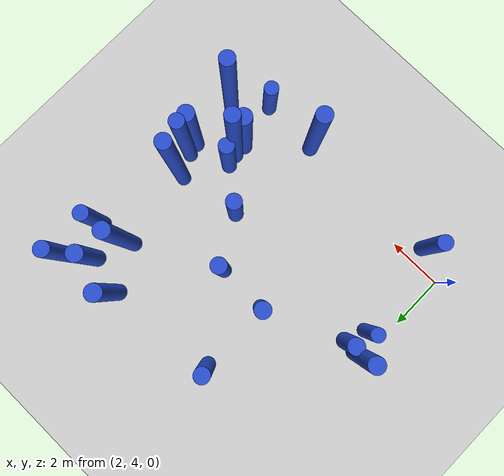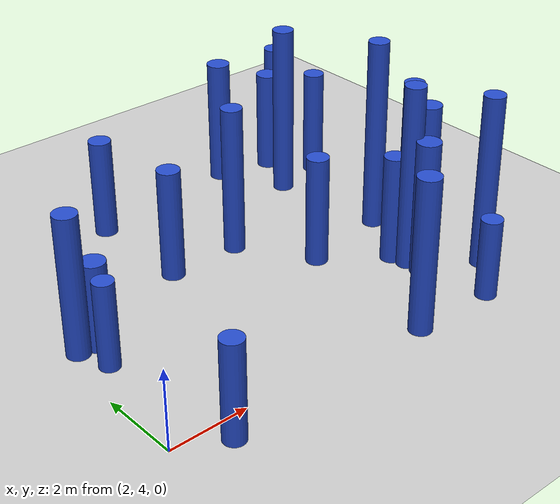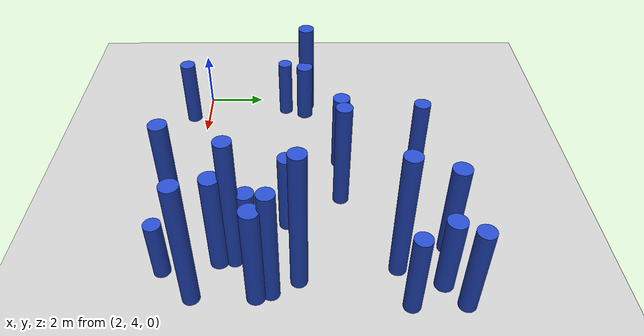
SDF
<sdf version="1.6">
 <world name="default">
  <plugin name="disable_physics" filename="libdisable_physics.so"/>
  <light name="sun" type="directional">
   <pose>0 0 10 0 -0 0</pose>
   <diffuse>0.8 0.8 0.8 1</diffuse>
   <specular>0.1 0.1 0.1 1</specular>
   <attenuation>
    <range>1000</range>
    <constant>0.9</constant>
    <linear>0.01</linear>
    <quadratic>0.001</quadratic>
   </attenuation>
   <direction>-0.5 0.5 -1</direction>
  </light>
  <model name="ground_plane">
   <static>1</static>
   <link name="link">
    <collision name="collision">
     <geometry><plane><normal>0 0 1</normal><size>100 100</size></plane></geometry>
     <surface><friction><ode><mu>100</mu><mu2>50</mu2></ode></friction></surface>
    </collision>
    <visual name="visual">
     <cast_shadows>0</cast_shadows>
     <geometry><plane><normal>0 0 1</normal><size>100 100</size></plane></geometry>
     <material>
      <script><uri>file://media/materials/scripts/gazebo.material</uri><name>Gazebo/Grey</name></script>
     </material>
    </visual>
   </link>
  </model>
  <gravity>0 0 -9.8</gravity>
  <magnetic_field>6e-06 2.3e-05 -4.2e-05</magnetic_field>
  <atmosphere type="adiabatic"/>
  <physics name="default_physics" default="0" type="ode">
   <max_step_size>0.001</max_step_size>
   <real_time_factor>1</real_time_factor>
   <real_time_update_rate>1000</real_time_update_rate>
  </physics>
  <scene><ambient>0.4 0.4 0.4 1</ambient><background>0.7 0.7 0.7 1</background><shadows>1</shadows></scene>
  <spherical_coordinates>
   <surface_model>EARTH_WGS84</surface_model>
   <latitude_deg>0</latitude_deg>
   <longitude_deg>0</longitude_deg>
   <elevation>0</elevation>
   <heading_deg>0</heading_deg>
  </spherical_coordinates>
  <model name="0">
   <static>0</static>
   <link name="link">
    <inertial>
     <mass>2</mass>
     <inertia>
      <ixx>3.44229</ixx>
      <ixy>0</ixy>
      <ixz>0</ixz>
      <iyy>3.44229</iyy>
      <iyz>0</iyz>
      <izz>0.0727484</izz>
     </inertia>
    </inertial>
    <collision name="collision">
     <geometry><cylinder><length>4.52056</length><radius>0.269719</radius></cylinder></geometry>
     <surface><contact><collide_without_contact>1</collide_without_contact></contact></surface>
    </collision>
    <visual name="visual">
     <geometry><cylinder><length>4.52056</length><radius>0.269719</radius></cylinder></geometry>
     <material>
      <script><uri>file://media/materials/scripts/gazebo.material</uri><name>Gazebo/Blue</name></script>
     </material>
    </visual>
    <gravity>0</gravity>
   </link>
   <pose>10.7828 10.6141 2.26028 0 -0 0</pose>
  </model>
  <model name="1">
   <static>0</static>
   <link name="link">
    <inertial>
     <mass>2</mass>
     <inertia>
      <ixx>3.77038</ixx>
      <ixy>0</ixy>
      <ixz>0</ixz>
      <iyy>3.77038</iyy>
      <iyz>0</iyz>
      <izz>0.0675363</izz>
     </inertia>
    </inertial>
    <collision name="collision">
     <geometry><cylinder><length>4.73494</length><radius>0.259878</radius></cylinder></geometry>
     <surface><contact><collide_without_contact>1</collide_without_contact></contact></surface>
    </collision>
    <visual name="visual">
     <geometry><cylinder><length>4.73494</length><radius>0.259878</radius></cylinder></geometry>
     <material>
      <script><uri>file://media/materials/scripts/gazebo.material</uri><name>Gazebo/Blue</name></script>
     </material>
    </visual>
    <gravity>0</gravity>
   </link>
   <pose>10.4505 5.68745 2.36747 0 -0 0</pose>
  </model>
  <model name="2">
   <static>0</static>
   <link name="link">
    <inertial>
     <mass>2</mass>
     <inertia>
      <ixx>1.37651</ixx>
      <ixy>0</ixy>
      <ixz>0</ixz>
      <iyy>1.37651</iyy>
      <iyz>0</iyz>
      <izz>0.0771164</izz>
     </inertia>
    </inertial>
    <collision name="collision">
     <geometry><cylinder><length>2.83332</length><radius>0.277698</radius></cylinder></geometry>
     <surface><contact><collide_without_contact>1</collide_without_contact></contact></surface>
    </collision>
    <visual name="visual">
     <geometry><cylinder><length>2.83332</length><radius>0.277698</radius></cylinder></geometry>
     <material>
      <script><uri>file://media/materials/scripts/gazebo.material</uri><name>Gazebo/Blue</name></script>
     </material>
    </visual>
    <gravity>0</gravity>
   </link>
   <pose>8.91758 7.25137 1.41666 0 -0 0</pose>
  </model>
  <model name="3">
   <static>0</static>
   <link name="link">
    <inertial>
     <mass>2</mass>
     <inertia><ixx>1.63383</ixx><ixy>0</ixy><ixz>0</ixz><iyy>1.63383</iyy><iyz>0</iyz><izz>0.075994</izz></inertia>
    </inertial>
    <collision name="collision">
     <geometry><cylinder><length>3.09435</length><radius>0.27567</radius></cylinder></geometry>
     <surface><contact><collide_without_contact>1</collide_without_contact></contact></surface>
    </collision>
    <visual name="visual">
     <geometry><cylinder><length>3.09435</length><radius>0.27567</radius></cylinder></geometry>
     <material>
      <script><uri>file://media/materials/scripts/gazebo.material</uri><name>Gazebo/Blue</name></script>
     </material>
    </visual>
    <gravity>0</gravity>
   </link>
   <pose>12.0781 12.4745 1.54718 0 -0 0</pose>
  </model>
  <model name="4">
   <static>0</static>
   <link name="link">
    <inertial>
     <mass>2</mass>
     <inertia>
      <ixx>2.58514</ixx>
      <ixy>0</ixy>
      <ixz>0</ixz>
      <iyy>2.58514</iyy>
      <iyz>0</iyz>
      <izz>0.0817187</izz>
     </inertia>
    </inertial>
    <collision name="collision">
     <geometry><cylinder><length>3.90714</length><radius>0.285865</radius></cylinder></geometry>
     <surface><contact><collide_without_contact>1</collide_without_contact></contact></surface>
    </collision>
    <visual name="visual">
     <geometry><cylinder><length>3.90714</length><radius>0.285865</radius></cylinder></geometry>
     <material>
      <script><uri>file://media/materials/scripts/gazebo.material</uri><name>Gazebo/Blue</name></script>
     </material>
    </visual>
    <gravity>0</gravity>
   </link>
   <pose>8.67666 3.55763 1.95357 0 -0 0</pose>
  </model>
  <model name="5">
   <static>0</static>
   <link name="link">
    <inertial>
     <mass>2</mass>
     <inertia>
      <ixx>0.734026</ixx>
      <ixy>0</ixy>
      <ixz>0</ixz>
      <iyy>0.734026</iyy>
      <iyz>0</iyz>
      <izz>0.0687196</izz>
     </inertia>
    </inertial>
    <collision name="collision">
     <geometry><cylinder><length>2.0489</length><radius>0.262144</radius></cylinder></geometry>
     <surface><contact><collide_without_contact>1</collide_without_contact></contact></surface>
    </collision>
    <visual name="visual">
     <geometry><cylinder><length>2.0489</length><radius>0.262144</radius></cylinder></geometry>
     <material>
      <script><uri>file://media/materials/scripts/gazebo.material</uri><name>Gazebo/Blue</name></script>
     </material>
    </visual>
    <gravity>0</gravity>
   </link>
   <pose>10.8459 3.50955 1.02445 0 -0 0</pose>
  </model>
  <model name="6">
   <static>0</static>
   <link name="link">
    <inertial>
     <mass>2</mass>
     <inertia>
      <ixx>1.05331</ixx>
      <ixy>0</ixy>
      <ixz>0</ixz>
      <iyy>1.05331</iyy>
      <iyz>0</iyz>
      <izz>0.0729255</izz>
     </inertia>
    </inertial>
    <collision name="collision">
     <geometry><cylinder><length>2.47004</length><radius>0.270047</radius></cylinder></geometry>
     <surface><contact><collide_without_contact>1</collide_without_contact></contact></surface>
    </collision>
    <visual name="visual">
     <geometry><cylinder><length>2.47004</length><radius>0.270047</radius></cylinder></geometry>
     <material>
      <script><uri>file://media/materials/scripts/gazebo.material</uri><name>Gazebo/Blue</name></script>
     </material>
    </visual>
    <gravity>0</gravity>
   </link>
   <pose>3.1969 3.42769 1.23502 0 -0 0</pose>
  </model>
  <model name="7">
   <static>0</static>
   <link name="link">
    <inertial>
     <mass>2</mass>
     <inertia>
      <ixx>4.19533</ixx>
      <ixy>0</ixy>
      <ixz>0</ixz>
      <iyy>4.19533</iyy>
      <iyz>0</iyz>
      <izz>0.0680755</izz>
     </inertia>
    </inertial>
    <collision name="collision">
     <geometry><cylinder><length>4.99677</length><radius>0.260913</radius></cylinder></geometry>
     <surface><contact><collide_without_contact>1</collide_without_contact></contact></surface>
    </collision>
    <visual name="visual">
     <geometry><cylinder><length>4.99677</length><radius>0.260913</radius></cylinder></geometry>
     <material>
      <script><uri>file://media/materials/scripts/gazebo.material</uri><name>Gazebo/Blue</name></script>
     </material>
    </visual>
    <gravity>0</gravity>
   </link>
   <pose>11.2302 7.64226 2.49839 0 -0 0</pose>
  </model>
  <model name="8">
   <static>0</static>
   <link name="link">
    <inertial>
     <mass>2</mass>
     <inertia><ixx>2.49</ixx><ixy>0</ixy><ixz>0</ixz><iyy>2.49</iyy><iyz>0</iyz><izz>0.0701199</izz></inertia>
    </inertial>
    <collision name="collision">
     <geometry><cylinder><length>3.83792</length><radius>0.264802</radius></cylinder></geometry>
     <surface><contact><collide_without_contact>1</collide_without_contact></contact></surface>
    </collision>
    <visual name="visual">
     <geometry><cylinder><length>3.83792</length><radius>0.264802</radius></cylinder></geometry>
     <material>
      <script><uri>file://media/materials/scripts/gazebo.material</uri><name>Gazebo/Blue</name></script>
     </material>
    </visual>
    <gravity>0</gravity>
   </link>
   <pose>7.76716 9.01307 1.91896 0 -0 0</pose>
  </model>
  <model name="9">
   <static>0</static>
   <link name="link">
    <inertial>
     <mass>2</mass>
     <inertia>
      <ixx>2.06386</ixx>
      <ixy>0</ixy>
      <ixz>0</ixz>
      <iyy>2.06386</iyy>
      <iyz>0</iyz>
      <izz>0.0891851</izz>
     </inertia>
    </inertial>
    <collision name="collision">
     <geometry><cylinder><length>3.48075</length><radius>0.298639</radius></cylinder></geometry>
     <surface><contact><collide_without_contact>1</collide_without_contact></contact></surface>
    </collision>
    <visual name="visual">
     <geometry><cylinder><length>3.48075</length><radius>0.298639</radius></cylinder></geometry>
     <material>
      <script><uri>file://media/materials/scripts/gazebo.material</uri><name>Gazebo/Blue</name></script>
     </material>
    </visual>
    <gravity>0</gravity>
   </link>
   <pose>10.4849 5.21768 1.74037 0 -0 0</pose>
  </model>
  <model name="10">
   <static>0</static>
   <link name="link">
    <inertial>
     <mass>2</mass>
     <inertia>
      <ixx>2.17796</ixx>
      <ixy>0</ixy>
      <ixz>0</ixz>
      <iyy>2.17796</iyy>
      <iyz>0</iyz>
      <izz>0.0832298</izz>
     </inertia>
    </inertial>
    <collision name="collision">
     <geometry><cylinder><length>3.58024</length><radius>0.288496</radius></cylinder></geometry>
     <surface><contact><collide_without_contact>1</collide_without_contact></contact></surface>
    </collision>
    <visual name="visual">
     <geometry><cylinder><length>3.58024</length><radius>0.288496</radius></cylinder></geometry>
     <material>
      <script><uri>file://media/materials/scripts/gazebo.material</uri><name>Gazebo/Blue</name></script>
     </material>
    </visual>
    <gravity>0</gravity>
   </link>
   <pose>11.8068 6.40251 1.79012 0 -0 0</pose>
  </model>
  <model name="11">
   <static>0</static>
   <link name="link">
    <inertial>
     <mass>2</mass>
     <inertia><ixx>1.38951</ixx><ixy>0</ixy><ixz>0</ixz><iyy>1.38951</iyy><iyz>0</iyz><izz>0.071622</izz></inertia>
    </inertial>
    <collision name="collision">
     <geometry><cylinder><length>2.84994</length><radius>0.267623</radius></cylinder></geometry>
     <surface><contact><collide_without_contact>1</collide_without_contact></contact></surface>
    </collision>
    <visual name="visual">
     <geometry><cylinder><length>2.84994</length><radius>0.267623</radius></cylinder></geometry>
     <material>
      <script><uri>file://media/materials/scripts/gazebo.material</uri><name>Gazebo/Blue</name></script>
     </material>
    </visual>
    <gravity>0</gravity>
   </link>
   <pose>12.1093 10.885 1.42497 0 -0 0</pose>
  </model>
  <model name="12">
   <static>0</static>
   <link name="link">
    <inertial>
     <mass>2</mass>
     <inertia>
      <ixx>0.857719</ixx>
      <ixy>0</ixy>
      <ixz>0</ixz>
      <iyy>0.857719</iyy>
      <iyz>0</iyz>
      <izz>0.0884862</izz>
     </inertia>
    </inertial>
    <collision name="collision">
     <geometry><cylinder><length>2.20927</length><radius>0.297466</radius></cylinder></geometry>
     <surface><contact><collide_without_contact>1</collide_without_contact></contact></surface>
    </collision>
    <visual name="visual">
     <geometry><cylinder><length>2.20927</length><radius>0.297466</radius></cylinder></geometry>
     <material>
      <script><uri>file://media/materials/scripts/gazebo.material</uri><name>Gazebo/Blue</name></script>
     </material>
    </visual>
    <gravity>0</gravity>
   </link>
   <pose>2.94661 7.78595 1.10463 0 -0 0</pose>
  </model>
  <model name="13">
   <static>0</static>
   <link name="link">
    <inertial>
     <mass>2</mass>
     <inertia><ixx>1.1466</ixx><ixy>0</ixy><ixz>0</ixz><iyy>1.1466</iyy><iyz>0</iyz><izz>0.0801803</izz></inertia>
    </inertial>
    <collision name="collision">
     <geometry><cylinder><length>2.57664</length><radius>0.283161</radius></cylinder></geometry>
     <surface><contact><collide_without_contact>1</collide_without_contact></contact></surface>
    </collision>
    <visual name="visual">
     <geometry><cylinder><length>2.57664</length><radius>0.283161</radius></cylinder></geometry>
     <material>
      <script><uri>file://media/materials/scripts/gazebo.material</uri><name>Gazebo/Blue</name></script>
     </material>
    </visual>
    <gravity>0</gravity>
   </link>
   <pose>5.83782 11.7926 1.28832 0 -0 0</pose>
  </model>
  <model name="14">
   <static>0</static>
   <link name="link">
    <inertial>
     <mass>2</mass>
     <inertia>
      <ixx>0.832687</ixx>
      <ixy>0</ixy>
      <ixz>0</ixz>
      <iyy>0.832687</iyy>
      <iyz>0</iyz>
      <izz>0.0630016</izz>
     </inertia>
    </inertial>
    <collision name="collision">
     <geometry><cylinder><length>2.19251</length><radius>0.251001</radius></cylinder></geometry>
     <surface><contact><collide_without_contact>1</collide_without_contact></contact></surface>
    </collision>
    <visual name="visual">
     <geometry><cylinder><length>2.19251</length><radius>0.251001</radius></cylinder></geometry>
     <material>
      <script><uri>file://media/materials/scripts/gazebo.material</uri><name>Gazebo/Blue</name></script>
     </material>
    </visual>
    <gravity>0</gravity>
   </link>
   <pose>2.69405 7.03472 1.09626 0 -0 0</pose>
  </model>
  <model name="15">
   <static>0</static>
   <link name="link">
    <inertial>
     <mass>2</mass>
     <inertia>
      <ixx>1.27295</ixx>
      <ixy>0</ixy>
      <ixz>0</ixz>
      <iyy>1.27295</iyy>
      <iyz>0</iyz>
      <izz>0.0891212</izz>
     </inertia>
    </inertial>
    <collision name="collision">
     <geometry><cylinder><length>2.71484</length><radius>0.298532</radius></cylinder></geometry>
     <surface><contact><collide_without_contact>1</collide_without_contact></contact></surface>
    </collision>
    <visual name="visual">
     <geometry><cylinder><length>2.71484</length><radius>0.298532</radius></cylinder></geometry>
     <material>
      <script><uri>file://media/materials/scripts/gazebo.material</uri><name>Gazebo/Blue</name></script>
     </material>
    </visual>
    <gravity>0</gravity>
   </link>
   <pose>11.3601 11.9243 1.35742 0 -0 0</pose>
  </model>
  <model name="16">
   <static>0</static>
   <link name="link">
    <inertial>
     <mass>2</mass>
     <inertia>
      <ixx>1.34503</ixx>
      <ixy>0</ixy>
      <ixz>0</ixz>
      <iyy>1.34503</iyy>
      <iyz>0</iyz>
      <izz>0.0767224</izz>
     </inertia>
    </inertial>
    <collision name="collision">
     <geometry><cylinder><length>2.8</length><radius>0.276988</radius></cylinder></geometry>
     <surface><contact><collide_without_contact>1</collide_without_contact></contact></surface>
    </collision>
    <visual name="visual">
     <geometry><cylinder><length>2.8</length><radius>0.276988</radius></cylinder></geometry>
     <material>
      <script><uri>file://media/materials/scripts/gazebo.material</uri><name>Gazebo/Blue</name></script>
     </material>
    </visual>
    <gravity>0</gravity>
   </link>
   <pose>10.3627 6.12728 1.4 0 -0 0</pose>
  </model>
  <model name="17">
   <static>0</static>
   <link name="link">
    <inertial>
     <mass>2</mass>
     <inertia>
      <ixx>2.12593</ixx>
      <ixy>0</ixy>
      <ixz>0</ixz>
      <iyy>2.12593</iyy>
      <iyz>0</iyz>
      <izz>0.0803077</izz>
     </inertia>
    </inertial>
    <collision name="collision">
     <geometry><cylinder><length>3.53761</length><radius>0.283386</radius></cylinder></geometry>
     <surface><contact><collide_without_contact>1</collide_without_contact></contact></surface>
    </collision>
    <visual name="visual">
     <geometry><cylinder><length>3.53761</length><radius>0.283386</radius></cylinder></geometry>
     <material>
      <script><uri>file://media/materials/scripts/gazebo.material</uri><name>Gazebo/Blue</name></script>
     </material>
    </visual>
    <gravity>0</gravity>
   </link>
   <pose>2.43208 7.84767 1.7688 0 -0 0</pose>
  </model>
  <model name="18">
   <static>0</static>
   <link name="link">
    <inertial>
     <mass>2</mass>
     <inertia>
      <ixx>1.87322</ixx>
      <ixy>0</ixy>
      <ixz>0</ixz>
      <iyy>1.87322</iyy>
      <iyz>0</iyz>
      <izz>0.0879667</izz>
     </inertia>
    </inertial>
    <collision name="collision">
     <geometry><cylinder><length>3.31291</length><radius>0.296592</radius></cylinder></geometry>
     <surface><contact><collide_without_contact>1</collide_without_contact></contact></surface>
    </collision>
    <visual name="visual">
     <geometry><cylinder><length>3.31291</length><radius>0.296592</radius></cylinder></geometry>
     <material>
      <script><uri>file://media/materials/scripts/gazebo.material</uri><name>Gazebo/Blue</name></script>
     </material>
    </visual>
    <gravity>0</gravity>
   </link>
   <pose>9.93048 12.2389 1.65646 0 -0 0</pose>
  </model>
  <model name="19">
   <static>0</static>
   <link name="link">
    <inertial>
     <mass>2</mass>
     <inertia>
      <ixx>1.39765</ixx>
      <ixy>0</ixy>
      <ixz>0</ixz>
      <iyy>1.39765</iyy>
      <iyz>0</iyz>
      <izz>0.0823269</izz>
     </inertia>
    </inertial>
    <collision name="collision">
     <geometry><cylinder><length>2.85288</length><radius>0.286927</radius></cylinder></geometry>
     <surface><contact><collide_without_contact>1</collide_without_contact></contact></surface>
    </collision>
    <visual name="visual">
     <geometry><cylinder><length>2.85288</length><radius>0.286927</radius></cylinder></geometry>
     <material>
      <script><uri>file://media/materials/scripts/gazebo.material</uri><name>Gazebo/Blue</name></script>
     </material>
    </visual>
    <gravity>0</gravity>
   </link>
   <pose>5.89454 9.03977 1.42644 0 -0 0</pose>
  </model>
  <model name="20">
   <static>0</static>
   <link name="link">
    <inertial>
     <mass>2</mass>
     <inertia>
      <ixx>2.78548</ixx>
      <ixy>0</ixy>
      <ixz>0</ixz>
      <iyy>2.78548</iyy>
      <iyz>0</iyz>
      <izz>0.0667182</izz>
     </inertia>
    </inertial>
    <collision name="collision">
     <geometry><cylinder><length>4.06358</length><radius>0.258299</radius></cylinder></geometry>
     <surface><contact><collide_without_contact>1</collide_without_contact></contact></surface>
    </collision>
    <visual name="visual">
     <geometry><cylinder><length>4.06358</length><radius>0.258299</radius></cylinder></geometry>
     <material>
      <script><uri>file://media/materials/scripts/gazebo.material</uri><name>Gazebo/Blue</name></script>
     </material>
    </visual>
    <gravity>0</gravity>
   </link>
   <pose>11.6808 6.84115 2.03179 0 -0 0</pose>
  </model>
  <model name="21">
   <static>0</static>
   <link name="link">
    <inertial>
     <mass>2</mass>
     <inertia>
      <ixx>3.39195</ixx>
      <ixy>0</ixy>
      <ixz>0</ixz>
      <iyy>3.39195</iyy>
      <iyz>0</iyz>
      <izz>0.0710312</izz>
     </inertia>
    </inertial>
    <collision name="collision">
     <geometry><cylinder><length>4.4876</length><radius>0.266517</radius></cylinder></geometry>
     <surface><contact><collide_without_contact>1</collide_without_contact></contact></surface>
    </collision>
    <visual name="visual">
     <geometry><cylinder><length>4.4876</length><radius>0.266517</radius></cylinder></geometry>
     <material>
      <script><uri>file://media/materials/scripts/gazebo.material</uri><name>Gazebo/Blue</name></script>
     </material>
    </visual>
    <gravity>0</gravity>
   </link>
   <pose>11.8271 4.51865 2.2438 0 -0 0</pose>
  </model>
 </world>
</sdf>
